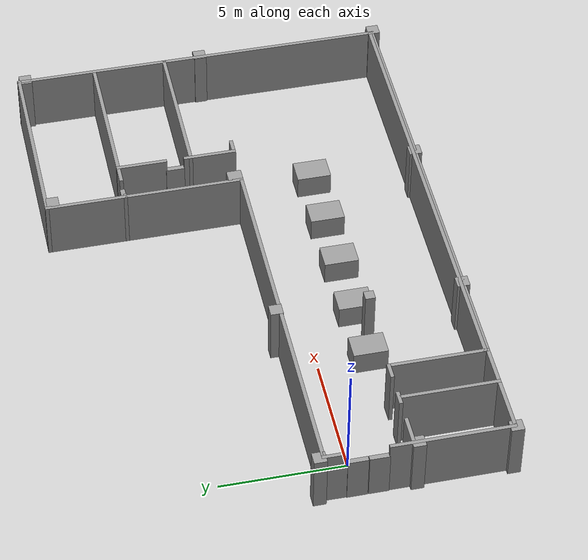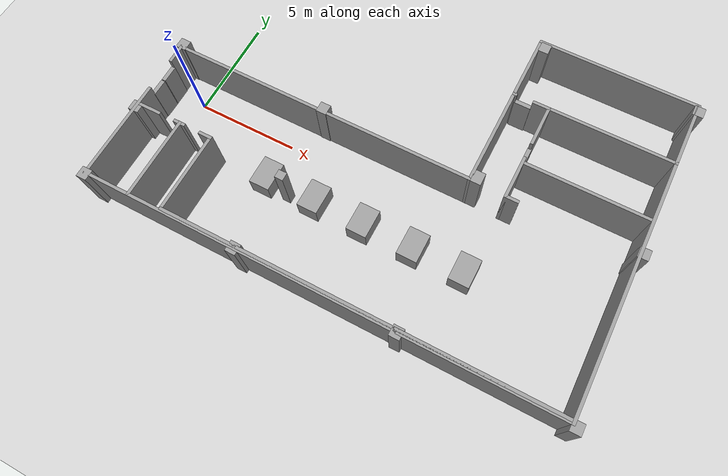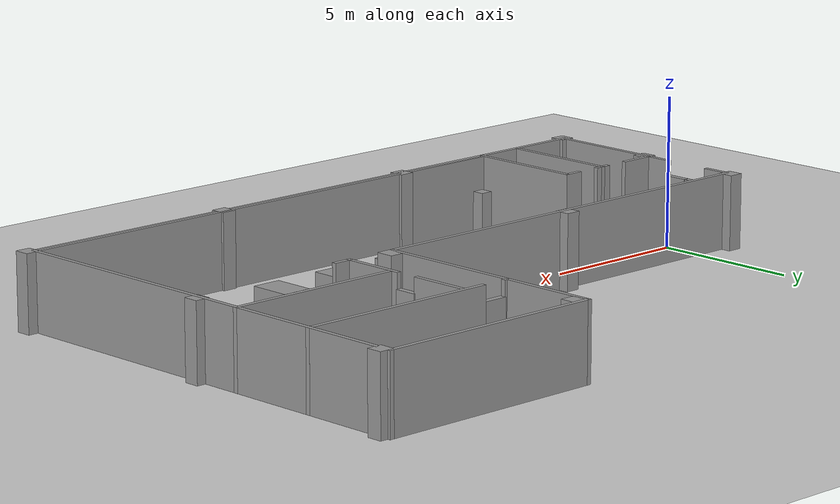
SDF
<sdf version="1.6">
 <world name="default">
  <light name="sun" type="directional">
   <pose>0 0 10 0 -0 0</pose>
   <diffuse>0.8 0.8 0.8 1</diffuse>
   <specular>0.2 0.2 0.2 1</specular>
   <attenuation>
    <range>1000</range>
    <constant>0.9</constant>
    <linear>0.01</linear>
    <quadratic>0.001</quadratic>
   </attenuation>
   <direction>-0.5 0.1 -0.9</direction>
  </light>
  <model name="ground_plane">
   <static>1</static>
   <link name="link">
    <collision name="collision">
     <geometry><plane><normal>0 0 1</normal><size>100 100</size></plane></geometry>
     <surface>
      <contact><collide_bitmask>65535</collide_bitmask></contact>
      <friction><ode><mu>100</mu><mu2>50</mu2></ode></friction>
     </surface>
    </collision>
    <visual name="visual">
     <cast_shadows>0</cast_shadows>
     <geometry><plane><normal>0 0 1</normal><size>100 100</size></plane></geometry>
     <material>
      <script><uri>file://media/materials/scripts/gazebo.material</uri><name>Gazebo/Grey</name></script>
     </material>
    </visual>
   </link>
  </model>
  <gravity>0 0 -9.8</gravity>
  <magnetic_field>6e-06 2.3e-05 -4.2e-05</magnetic_field>
  <atmosphere type="adiabatic"/>
  <physics name="default_physics" default="0" type="ode">
   <max_step_size>0.001</max_step_size>
   <real_time_factor>1</real_time_factor>
   <real_time_update_rate>1000</real_time_update_rate>
  </physics>
  <scene><ambient>0.4 0.4 0.4 1</ambient><background>0.7 0.7 0.7 1</background><shadows>1</shadows></scene>
  <spherical_coordinates>
   <surface_model>EARTH_WGS84</surface_model>
   <latitude_deg>0</latitude_deg>
   <longitude_deg>0</longitude_deg>
   <elevation>0</elevation>
   <heading_deg>0</heading_deg>
  </spherical_coordinates>
  <model name="care_lab_111_112">
   <pose>10 1.5 0 0 -0 0</pose>
   <link name="Door_2">
    <collision name="Door_2_Collision">
     <geometry><box><size>0.796 0.2 2</size></box></geometry>
     <pose>0 0 1 0 -0 0</pose>
    </collision>
    <visual name="Door_2_Visual">
     <pose>0 0 1 0 -0 0</pose>
     <geometry><box><size>0.796 0.2 2</size></box></geometry>
     <material>
      <script><uri>file://media/materials/scripts/gazebo.material</uri><name>Gazebo/Grey</name></script>
     </material>
    </visual>
    <pose>-11.3896 -2.35824 0 0 -0 1.56448</pose>
   </link>
   <link name="Door_3">
    <collision name="Door_3_Collision">
     <geometry><box><size>0.814 0.2 2</size></box></geometry>
     <pose>0 0 1 0 -0 0</pose>
    </collision>
    <visual name="Door_3_Visual">
     <pose>0 0 1 0 -0 0</pose>
     <geometry><box><size>0.814 0.2 2</size></box></geometry>
     <material>
      <script><uri>file://media/materials/scripts/gazebo.material</uri><name>Gazebo/Grey</name></script>
     </material>
    </visual>
    <pose>-11.3896 -1.52824 0 0 0 -1.56747</pose>
   </link>
   <link name="Door_4">
    <collision name="Door_4_Collision">
     <geometry><box><size>0.805661 0.2 2</size></box></geometry>
     <pose>0 0 1 0 -0 0</pose>
    </collision>
    <visual name="Door_4_Visual">
     <pose>0 0 1 0 -0 0</pose>
     <geometry><box><size>0.805661 0.2 2</size></box></geometry>
     <material>
      <script><uri>file://media/materials/scripts/gazebo.material</uri><name>Gazebo/Grey</name></script>
     </material>
    </visual>
    <pose>4.05156 4.57073 0 0 -0 0</pose>
   </link>
   <link name="Door_5">
    <collision name="Door_5_Collision">
     <geometry><box><size>0.763931 0.2 2</size></box></geometry>
     <pose>0 0 1 0 -0 0</pose>
    </collision>
    <visual name="Door_5_Visual">
     <pose>0 0 1 0 -0 0</pose>
     <geometry><box><size>0.763931 0.2 2</size></box></geometry>
     <material>
      <script><uri>file://media/materials/scripts/gazebo.material</uri><name>Gazebo/Grey</name></script>
     </material>
    </visual>
    <pose>5.23912 2.23085 0 0 -0 1.56757</pose>
   </link>
   <link name="Wall_13">
    <collision name="Wall_13_Collision">
     <geometry><box><size>22.754 0.15 2.5</size></box></geometry>
     <pose>0 0 1.25 0 -0 0</pose>
    </collision>
    <visual name="Wall_13_Visual">
     <pose>0 0 1.25 0 -0 0</pose>
     <geometry><box><size>22.754 0.15 2.5</size></box></geometry>
     <material>
      <script><uri>file://media/materials/scripts/gazebo.material</uri><name>Gazebo/Grey</name></script>
      <ambient>1 1 1 1</ambient>
     </material>
     <meta><layer>0</layer></meta>
    </visual>
    <pose>-0.087589 -7.53924 0 0 -0 0</pose>
   </link>
   <link name="Wall_14">
    <collision name="Wall_14_Collision">
     <geometry><box><size>15.485 0.15 2.5</size></box></geometry>
     <pose>0 0 1.25 0 -0 0</pose>
    </collision>
    <visual name="Wall_14_Visual">
     <pose>0 0 1.25 0 -0 0</pose>
     <geometry><box><size>15.485 0.15 2.5</size></box></geometry>
     <material>
      <script><uri>file://media/materials/scripts/gazebo.material</uri><name>Gazebo/Grey</name></script>
      <ambient>1 1 1 1</ambient>
     </material>
     <meta><layer>0</layer></meta>
    </visual>
    <pose>11.2144 0.128262 0 0 -0 1.5708</pose>
   </link>
   <link name="Wall_16">
    <collision name="Wall_16_Collision">
     <geometry><box><size>7.83619 0.15 2.5</size></box></geometry>
     <pose>0 0 1.25 0 -0 0</pose>
    </collision>
    <visual name="Wall_16_Visual">
     <pose>0 0 1.25 0 -0 0</pose>
     <geometry><box><size>7.83619 0.15 2.5</size></box></geometry>
     <material>
      <script><uri>file://media/materials/scripts/gazebo.material</uri><name>Gazebo/Grey</name></script>
      <ambient>1 1 1 1</ambient>
     </material>
     <meta><layer>0</layer></meta>
    </visual>
    <pose>7.37141 7.79576 0 0 -0 3.14159</pose>
   </link>
   <link name="Wall_18">
    <collision name="Wall_18_Collision">
     <geometry><box><size>8.15342 0.15 2.5</size></box></geometry>
     <pose>0 0 1.25 0 -0 0</pose>
    </collision>
    <visual name="Wall_18_Visual">
     <pose>0 0 1.25 0 -0 0</pose>
     <geometry><box><size>8.15342 0.15 2.5</size></box></geometry>
     <material>
      <script><uri>file://media/materials/scripts/gazebo.material</uri><name>Gazebo/Grey</name></script>
      <ambient>1 1 1 1</ambient>
     </material>
     <meta><layer>0</layer></meta>
    </visual>
    <pose>3.52841 3.79426 0 0 -0 -1.5708</pose>
   </link>
   <link name="Wall_19">
    <collision name="Wall_19_Collision">
     <geometry><box><size>15.068 0.15 2.5</size></box></geometry>
     <pose>0 0 1.25 0 -0 0</pose>
    </collision>
    <visual name="Wall_19_Visual">
     <pose>0 0 1.25 0 -0 0</pose>
     <geometry><box><size>15.068 0.15 2.5</size></box></geometry>
     <material>
      <script><uri>file://media/materials/scripts/gazebo.material</uri><name>Gazebo/Grey</name></script>
      <ambient>1 1 1 1</ambient>
     </material>
     <meta><layer>0</layer></meta>
    </visual>
    <pose>-3.93059 -0.207238 0 0 -0 3.14159</pose>
   </link>
   <link name="Wall_21">
    <collision name="Wall_21_Collision">
     <geometry><box><size>0.997 0.15 2.5</size></box></geometry>
     <pose>0 0 1.25 0 -0 0</pose>
    </collision>
    <visual name="Wall_21_Visual">
     <pose>0 0 1.25 0 -0 0</pose>
     <geometry><box><size>0.997 0.15 2.5</size></box></geometry>
     <material>
      <script><uri>file://media/materials/scripts/gazebo.material</uri><name>Gazebo/Grey</name></script>
      <ambient>1 1 1 1</ambient>
     </material>
     <meta><layer>0</layer></meta>
    </visual>
    <pose>-11.3896 -0.630738 0 0 -0 -1.5708</pose>
   </link>
   <link name="Wall_24">
    <collision name="Wall_24_Collision">
     <geometry><box><size>4.892 0.15 2.5</size></box></geometry>
     <pose>0 0 1.25 0 -0 0</pose>
    </collision>
    <visual name="Wall_24_Visual">
     <pose>0 0 1.25 0 -0 0</pose>
     <geometry><box><size>4.892 0.15 2.5</size></box></geometry>
     <material>
      <script><uri>file://media/materials/scripts/gazebo.material</uri><name>Gazebo/Grey</name></script>
      <ambient>1 1 1 1</ambient>
     </material>
     <meta><layer>0</layer></meta>
    </visual>
    <pose>-11.3896 -5.16824 0 0 -0 -1.5708</pose>
   </link>
   <link name="Wall_30">
    <collision name="Wall_30_Collision">
     <geometry><box><size>1.25 0.15 2.5</size></box></geometry>
     <pose>0 0 1.25 0 -0 0</pose>
    </collision>
    <visual name="Wall_30_Visual">
     <pose>0 0 1.25 0 -0 0</pose>
     <geometry><box><size>1.25 0.15 2.5</size></box></geometry>
     <material>
      <script><uri>file://media/materials/scripts/gazebo.material</uri><name>Gazebo/Grey</name></script>
      <ambient>1 1 1 1</ambient>
     </material>
     <meta><layer>0</layer></meta>
    </visual>
    <pose>-10.8145 -3.64547 0 0 -0 0</pose>
   </link>
   <link name="Wall_32">
    <collision name="Wall_32_Collision">
     <geometry><box><size>0.588 0.15 2.5</size></box></geometry>
     <pose>0 0 1.25 0 -0 0</pose>
    </collision>
    <visual name="Wall_32_Visual">
     <pose>0 0 1.25 0 -0 0</pose>
     <geometry><box><size>0.588 0.15 2.5</size></box></geometry>
     <material>
      <script><uri>file://media/materials/scripts/gazebo.material</uri><name>Gazebo/Grey</name></script>
      <ambient>1 1 1 1</ambient>
     </material>
     <meta><layer>0</layer></meta>
    </visual>
    <pose>-9.15859 -3.64524 0 0 -0 0</pose>
   </link>
   <link name="Wall_34">
    <collision name="Wall_34_Collision">
     <geometry><box><size>0.678 0.15 2.5</size></box></geometry>
     <pose>0 0 1.25 0 -0 0</pose>
    </collision>
    <visual name="Wall_34_Visual">
     <pose>0 0 1.25 0 -0 0</pose>
     <geometry><box><size>0.678 0.15 2.5</size></box></geometry>
     <material>
      <script><uri>file://media/materials/scripts/gazebo.material</uri><name>Gazebo/Grey</name></script>
      <ambient>1 1 1 1</ambient>
     </material>
     <meta><layer>0</layer></meta>
    </visual>
    <pose>-7.77559 -3.64524 0 0 -0 0</pose>
   </link>
   <link name="Wall_36">
    <collision name="Wall_36_Collision">
     <geometry><box><size>4.03556 0.15 2.5</size></box></geometry>
     <pose>0 0 1.25 0 -0 0</pose>
    </collision>
    <visual name="Wall_36_Visual">
     <pose>0 0 1.25 0 -0 0</pose>
     <geometry><box><size>4.03556 0.15 2.5</size></box></geometry>
     <material>
      <script><uri>file://media/materials/scripts/gazebo.material</uri><name>Gazebo/Grey</name></script>
      <ambient>1 1 1 1</ambient>
     </material>
     <meta><layer>0</layer></meta>
    </visual>
    <pose>-7.51159 -5.58824 0 0 -0 -1.5708</pose>
   </link>
   <link name="Wall_39">
    <collision name="Wall_39_Collision">
     <geometry><box><size>4.041 0.15 2.5</size></box></geometry>
     <pose>0 0 1.25 0 -0 0</pose>
    </collision>
    <visual name="Wall_39_Visual">
     <pose>0 0 1.25 0 -0 0</pose>
     <geometry><box><size>4.041 0.15 2.5</size></box></geometry>
     <material>
      <script><uri>file://media/materials/scripts/gazebo.material</uri><name>Gazebo/Grey</name></script>
      <ambient>1 1 1 1</ambient>
     </material>
     <meta><layer>0</layer></meta>
    </visual>
    <pose>-9.13359 -5.59074 0 0 -0 1.5708</pose>
   </link>
   <link name="Wall_42">
    <collision name="Wall_42_Collision">
     <geometry><box><size>18.858 0.15 2.5</size></box></geometry>
     <pose>0 0 1.25 0 -0 0</pose>
    </collision>
    <visual name="Wall_42_Visual">
     <pose>0 0 1.25 0 -0 0</pose>
     <geometry><box><size>18.858 0.15 2.5</size></box></geometry>
     <material>
      <script><uri>file://media/materials/scripts/gazebo.material</uri><name>Gazebo/Grey</name></script>
      <ambient>1 1 1 1</ambient>
     </material>
     <meta><layer>0</layer></meta>
    </visual>
    <pose>1.86041 -7.44724 0 0 -0 0</pose>
   </link>
   <link name="Wall_44">
    <collision name="Wall_44_Collision">
     <geometry><box><size>0.51 0.5 2.5</size></box></geometry>
     <pose>0 0 1.25 0 -0 0</pose>
    </collision>
    <visual name="Wall_44_Visual">
     <pose>0 0 1.25 0 -0 0</pose>
     <geometry><box><size>0.51 0.5 2.5</size></box></geometry>
     <material>
      <script><uri>file://media/materials/scripts/gazebo.material</uri><name>Gazebo/Grey</name></script>
      <ambient>1 1 1 1</ambient>
     </material>
     <meta><layer>0</layer></meta>
    </visual>
    <pose>3.82501 7.52635 0 0 -0 1.5708</pose>
   </link>
   <link name="Wall_46">
    <collision name="Wall_46_Collision">
     <geometry><box><size>0.51 0.5 2.5</size></box></geometry>
     <pose>0 0 1.25 0 -0 0</pose>
    </collision>
    <visual name="Wall_46_Visual">
     <pose>0 0 1.25 0 -0 0</pose>
     <geometry><box><size>0.51 0.5 2.5</size></box></geometry>
     <material>
      <script><uri>file://media/materials/scripts/gazebo.material</uri><name>Gazebo/Grey</name></script>
      <ambient>1 1 1 1</ambient>
     </material>
     <meta><layer>0</layer></meta>
    </visual>
    <pose>11.3024 7.52234 0 0 -0 1.5708</pose>
   </link>
   <link name="Wall_50">
    <collision name="Wall_50_Collision">
     <geometry><box><size>0.6 0.5 2.5</size></box></geometry>
     <pose>0 0 1.25 0 -0 0</pose>
    </collision>
    <visual name="Wall_50_Visual">
     <pose>0 0 1.25 0 -0 0</pose>
     <geometry><box><size>0.6 0.5 2.5</size></box></geometry>
     <material>
      <script><uri>file://media/materials/scripts/gazebo.material</uri><name>Gazebo/Grey</name></script>
      <ambient>1 1 1 1</ambient>
     </material>
     <meta><layer>0</layer></meta>
    </visual>
    <pose>3.81841 0.014914 0 0 -0 1.5708</pose>
   </link>
   <link name="Wall_52">
    <collision name="Wall_52_Collision">
     <geometry><box><size>6.836 0.15 2.5</size></box></geometry>
     <pose>0 0 1.25 0 -0 0</pose>
    </collision>
    <visual name="Wall_52_Visual">
     <pose>0 0 1.25 0 -0 0</pose>
     <geometry><box><size>6.836 0.15 2.5</size></box></geometry>
     <material>
      <script><uri>file://media/materials/scripts/gazebo.material</uri><name>Gazebo/Grey</name></script>
      <ambient>1 1 1 1</ambient>
     </material>
     <meta><layer>0</layer></meta>
    </visual>
    <pose>7.87141 4.58676 0 0 -0 0</pose>
   </link>
   <link name="Wall_54">
    <collision name="Wall_54_Collision">
     <geometry><box><size>2.094 0.15 2.5</size></box></geometry>
     <pose>0 0 1.25 0 -0 0</pose>
    </collision>
    <visual name="Wall_54_Visual">
     <pose>0 0 1.25 0 -0 0</pose>
     <geometry><box><size>2.094 0.15 2.5</size></box></geometry>
     <material>
      <script><uri>file://media/materials/scripts/gazebo.material</uri><name>Gazebo/Grey</name></script>
      <ambient>1 1 1 1</ambient>
     </material>
     <meta><layer>0</layer></meta>
    </visual>
    <pose>5.23641 3.61476 0 0 -0 -1.5708</pose>
   </link>
   <link name="Wall_57">
    <collision name="Wall_57_Collision">
     <geometry><box><size>2.174 0.15 2.5</size></box></geometry>
     <pose>0 0 1.25 0 -0 0</pose>
    </collision>
    <visual name="Wall_57_Visual">
     <pose>0 0 1.25 0 -0 0</pose>
     <geometry><box><size>2.174 0.15 2.5</size></box></geometry>
     <material>
      <script><uri>file://media/materials/scripts/gazebo.material</uri><name>Gazebo/Grey</name></script>
      <ambient>1 1 1 1</ambient>
     </material>
     <meta><layer>0</layer></meta>
    </visual>
    <pose>5.23341 0.774762 0 0 -0 -1.5708</pose>
   </link>
   <link name="Wall_60">
    <collision name="Wall_60_Collision">
     <geometry><box><size>6.131 0.15 2.5</size></box></geometry>
     <pose>0 0 1.25 0 -0 0</pose>
    </collision>
    <visual name="Wall_60_Visual">
     <pose>0 0 1.25 0 -0 0</pose>
     <geometry><box><size>6.131 0.15 2.5</size></box></geometry>
     <material>
      <script><uri>file://media/materials/scripts/gazebo.material</uri><name>Gazebo/Grey</name></script>
      <ambient>1 1 1 1</ambient>
     </material>
     <meta><layer>0</layer></meta>
    </visual>
    <pose>8.22391 1.56876 0 0 -0 3.14159</pose>
   </link>
   <link name="Wall_62">
    <collision name="Wall_62_Collision">
     <geometry><box><size>0.51 0.5 2.5</size></box></geometry>
     <pose>0 0 1.25 0 -0 0</pose>
    </collision>
    <visual name="Wall_62_Visual">
     <pose>0 0 1.25 0 -0 0</pose>
     <geometry><box><size>0.51 0.5 2.5</size></box></geometry>
     <material>
      <script><uri>file://media/materials/scripts/gazebo.material</uri><name>Gazebo/Grey</name></script>
      <ambient>1 1 1 1</ambient>
     </material>
     <meta><layer>0</layer></meta>
    </visual>
    <pose>-11.3837 -0.052975 0 0 -0 -1.5708</pose>
   </link>
   <link name="Wall_64">
    <collision name="Wall_64_Collision">
     <geometry><box><size>0.51 0.5 2.5</size></box></geometry>
     <pose>0 0 1.25 0 -0 0</pose>
    </collision>
    <visual name="Wall_64_Visual">
     <pose>0 0 1.25 0 -0 0</pose>
     <geometry><box><size>0.51 0.5 2.5</size></box></geometry>
     <material>
      <script><uri>file://media/materials/scripts/gazebo.material</uri><name>Gazebo/Grey</name></script>
      <ambient>1 1 1 1</ambient>
     </material>
     <meta><layer>0</layer></meta>
    </visual>
    <pose>-3.80512 -0.054559 0 0 -0 1.5708</pose>
   </link>
   <link name="Wall_68">
    <collision name="Wall_68_Collision">
     <geometry><box><size>0.51 0.5 2.5</size></box></geometry>
     <pose>0 0 1.25 0 -0 0</pose>
    </collision>
    <visual name="Wall_68_Visual">
     <pose>0 0 1.25 0 -0 0</pose>
     <geometry><box><size>0.51 0.5 2.5</size></box></geometry>
     <material>
      <script><uri>file://media/materials/scripts/gazebo.material</uri><name>Gazebo/Grey</name></script>
      <ambient>1 1 1 1</ambient>
     </material>
     <meta><layer>0</layer></meta>
    </visual>
    <pose>11.3464 0.011996 0 0 -0 1.5708</pose>
   </link>
   <link name="Wall_70">
    <collision name="Wall_70_Collision">
     <geometry><box><size>0.51 0.5 2.5</size></box></geometry>
     <pose>0 0 1.25 0 -0 0</pose>
    </collision>
    <visual name="Wall_70_Visual">
     <pose>0 0 1.25 0 -0 0</pose>
     <geometry><box><size>0.51 0.5 2.5</size></box></geometry>
     <material>
      <script><uri>file://media/materials/scripts/gazebo.material</uri><name>Gazebo/Grey</name></script>
      <ambient>1 1 1 1</ambient>
     </material>
     <meta><layer>0</layer></meta>
    </visual>
    <pose>11.3857 -7.61597 0 0 -0 1.5708</pose>
   </link>
   <link name="Wall_72">
    <collision name="Wall_72_Collision">
     <geometry><box><size>0.51 0.5 2.5</size></box></geometry>
     <pose>0 0 1.25 0 -0 0</pose>
    </collision>
    <visual name="Wall_72_Visual">
     <pose>0 0 1.25 0 -0 0</pose>
     <geometry><box><size>0.51 0.5 2.5</size></box></geometry>
     <material>
      <script><uri>file://media/materials/scripts/gazebo.material</uri><name>Gazebo/Grey</name></script>
      <ambient>1 1 1 1</ambient>
     </material>
     <meta><layer>0</layer></meta>
    </visual>
    <pose>3.77054 -7.53752 0 0 -0 -1.5708</pose>
   </link>
   <link name="Wall_75">
    <collision name="Wall_75_Collision">
     <geometry><box><size>0.51 0.5 2.5</size></box></geometry>
     <pose>0 0 1.25 0 -0 0</pose>
    </collision>
    <visual name="Wall_75_Visual">
     <pose>0 0 1.25 0 -0 0</pose>
     <geometry><box><size>0.51 0.5 2.5</size></box></geometry>
     <material>
      <script><uri>file://media/materials/scripts/gazebo.material</uri><name>Gazebo/Grey</name></script>
      <ambient>1 1 1 1</ambient>
     </material>
     <meta><layer>0</layer></meta>
    </visual>
    <pose>-3.83947 -7.52575 0 0 -0 -1.5708</pose>
   </link>
   <link name="Wall_77">
    <collision name="Wall_77_Collision">
     <geometry><box><size>0.51 0.5 2.5</size></box></geometry>
     <pose>0 0 1.25 0 -0 0</pose>
    </collision>
    <visual name="Wall_77_Visual">
     <pose>0 0 1.25 0 -0 0</pose>
     <geometry><box><size>0.51 0.5 2.5</size></box></geometry>
     <material>
      <script><uri>file://media/materials/scripts/gazebo.material</uri><name>Gazebo/Grey</name></script>
      <ambient>1 1 1 1</ambient>
     </material>
     <meta><layer>0</layer></meta>
    </visual>
    <pose>-11.3857 -7.59331 0 0 -0 1.5708</pose>
   </link>
   <link name="Wall_79">
    <collision name="Wall_79_Collision">
     <geometry><box><size>0.51 0.5 2.5</size></box></geometry>
     <pose>0 0 1.25 0 -0 0</pose>
    </collision>
    <visual name="Wall_79_Visual">
     <pose>0 0 1.25 0 -0 0</pose>
     <geometry><box><size>0.51 0.5 2.5</size></box></geometry>
     <material>
      <script><uri>file://media/materials/scripts/gazebo.material</uri><name>Gazebo/Grey</name></script>
      <ambient>1 1 1 1</ambient>
     </material>
     <meta><layer>0</layer></meta>
    </visual>
    <pose>-11.3789 -3.82735 0 0 -0 -1.5708</pose>
   </link>
   <link name="Wall_81">
    <collision name="Wall_81_Collision">
     <geometry><box><size>0.697 0.15 2.5</size></box></geometry>
     <pose>0 0 1.25 0 -0 0</pose>
    </collision>
    <visual name="Wall_81_Visual">
     <pose>0 0 1.25 0 -0 0</pose>
     <geometry><box><size>0.697 0.15 2.5</size></box></geometry>
     <material>
      <script><uri>file://media/materials/scripts/gazebo.material</uri><name>Gazebo/Grey</name></script>
      <ambient>1 1 1 1</ambient>
     </material>
     <meta><layer>0</layer></meta>
    </visual>
    <pose>5.50691 -0.237238 0 0 -0 0</pose>
   </link>
   <link name="Wall_83">
    <collision name="Wall_83_Collision">
     <geometry><box><size>0.41 0.4 2.5</size></box></geometry>
     <pose>0 0 1.25 0 -0 0</pose>
    </collision>
    <visual name="Wall_83_Visual">
     <pose>0 0 1.25 0 -0 0</pose>
     <geometry><box><size>0.41 0.4 2.5</size></box></geometry>
     <material>
      <script><uri>file://media/materials/scripts/gazebo.material</uri><name>Gazebo/Grey</name></script>
      <ambient>1 1 1 1</ambient>
     </material>
     <meta><layer>0</layer></meta>
    </visual>
    <pose>-3.79657 -3.78449 0 0 -0 0</pose>
   </link>
   <link name="Wall_85">
    <collision name="Wall_85_Collision">
     <geometry><box><size>0.229 0.15 2.5</size></box></geometry>
     <pose>0 0 1.25 0 -0 0</pose>
    </collision>
    <visual name="Wall_85_Visual">
     <pose>0 0 1.25 0 -0 0</pose>
     <geometry><box><size>0.229 0.15 2.5</size></box></geometry>
     <material>
      <script><uri>file://media/materials/scripts/gazebo.material</uri><name>Gazebo/Grey</name></script>
      <ambient>1 1 1 1</ambient>
     </material>
     <meta><layer>0</layer></meta>
    </visual>
    <pose>3.56791 4.58676 0 0 -0 0</pose>
   </link>
   <static>1</static>
  </model>
  <model name="robot_base">
   <link name="link_0">
    <inertial>
     <mass>1</mass>
     <inertia>
      <ixx>0.166667</ixx>
      <ixy>0</ixy>
      <ixz>0</ixz>
      <iyy>0.166667</iyy>
      <iyz>0</iyz>
      <izz>0.166667</izz>
     </inertia>
    </inertial>
    <visual name="visual">
     <geometry><box><size>1 1.4 1</size></box></geometry>
     <material>
      <lighting>1</lighting>
      <script><uri>file://media/materials/scripts/gazebo.material</uri><name>Gazebo/Grey</name></script>
      <shader type="pixel"><normal_map>__default__</normal_map></shader>
      <ambient>0.3 0.3 0.3 1</ambient>
      <diffuse>0.7 0.7 0.7 1</diffuse>
      <specular>0.01 0.01 0.01 1</specular>
      <emissive>0 0 0 1</emissive>
     </material>
    </visual>
    <collision name="collision">
     <geometry><box><size>1 1.4 1</size></box></geometry>
     <surface>
      <friction>
       <ode><mu>1</mu><mu2>1</mu2><fdir1>0 0 0</fdir1><slip1>0</slip1><slip2>0</slip2></ode>
       <torsional>
        <coefficient>1</coefficient>
        <patch_radius>0</patch_radius>
        <surface_radius>0</surface_radius>
        <use_patch_radius>1</use_patch_radius>
        <ode><slip>0</slip></ode>
       </torsional>
      </friction>
      <bounce><restitution_coefficient>0</restitution_coefficient><threshold>1e+06</threshold></bounce>
      <contact>
       <collide_without_contact>0</collide_without_contact>
       <collide_without_contact_bitmask>1</collide_without_contact_bitmask>
       <collide_bitmask>1</collide_bitmask>
       <ode>
        <soft_cfm>0</soft_cfm>
        <soft_erp>0.2</soft_erp>
        <kp>1e+13</kp>
        <kd>1</kd>
        <max_vel>0.01</max_vel>
        <min_depth>0</min_depth>
       </ode>
       <bullet>
        <split_impulse>1</split_impulse>
        <split_impulse_penetration_threshold>-0.01</split_impulse_penetration_threshold>
        <soft_cfm>0</soft_cfm>
        <soft_erp>0.2</soft_erp>
        <kp>1e+13</kp>
        <kd>1</kd>
       </bullet>
      </contact>
     </surface>
    </collision>
   </link>
   <static>1</static>
   <pose>7.5 -2 0.5 0 -0 0</pose>
  </model>
  <model name="robot_base_clone">
   <link name="link_0">
    <inertial>
     <mass>1</mass>
     <inertia>
      <ixx>0.166667</ixx>
      <ixy>0</ixy>
      <ixz>0</ixz>
      <iyy>0.166667</iyy>
      <iyz>0</iyz>
      <izz>0.166667</izz>
     </inertia>
    </inertial>
    <visual name="visual">
     <geometry><box><size>1 1.4 1</size></box></geometry>
     <material>
      <lighting>1</lighting>
      <script><uri>file://media/materials/scripts/gazebo.material</uri><name>Gazebo/Grey</name></script>
      <shader type="pixel"><normal_map>__default__</normal_map></shader>
      <ambient>0.3 0.3 0.3 1</ambient>
      <diffuse>0.7 0.7 0.7 1</diffuse>
      <specular>0.01 0.01 0.01 1</specular>
      <emissive>0 0 0 1</emissive>
     </material>
    </visual>
    <collision name="collision">
     <geometry><box><size>1 1.4 1</size></box></geometry>
     <surface>
      <friction>
       <ode><mu>1</mu><mu2>1</mu2><fdir1>0 0 0</fdir1><slip1>0</slip1><slip2>0</slip2></ode>
       <torsional>
        <coefficient>1</coefficient>
        <patch_radius>0</patch_radius>
        <surface_radius>0</surface_radius>
        <use_patch_radius>1</use_patch_radius>
        <ode><slip>0</slip></ode>
       </torsional>
      </friction>
      <bounce><restitution_coefficient>0</restitution_coefficient><threshold>1e+06</threshold></bounce>
      <contact>
       <collide_without_contact>0</collide_without_contact>
       <collide_without_contact_bitmask>1</collide_without_contact_bitmask>
       <collide_bitmask>1</collide_bitmask>
       <ode>
        <soft_cfm>0</soft_cfm>
        <soft_erp>0.2</soft_erp>
        <kp>1e+13</kp>
        <kd>1</kd>
        <max_vel>0.01</max_vel>
        <min_depth>0</min_depth>
       </ode>
       <bullet>
        <split_impulse>1</split_impulse>
        <split_impulse_penetration_threshold>-0.01</split_impulse_penetration_threshold>
        <soft_cfm>0</soft_cfm>
        <soft_erp>0.2</soft_erp>
        <kp>1e+13</kp>
        <kd>1</kd>
       </bullet>
      </contact>
     </surface>
    </collision>
   </link>
   <static>1</static>
   <pose>5 -2 0.5 0 -0 0</pose>
  </model>
  <model name="robot_base_clone_0">
   <link name="link_0">
    <inertial>
     <mass>1</mass>
     <inertia>
      <ixx>0.166667</ixx>
      <ixy>0</ixy>
      <ixz>0</ixz>
      <iyy>0.166667</iyy>
      <iyz>0</iyz>
      <izz>0.166667</izz>
     </inertia>
    </inertial>
    <visual name="visual">
     <geometry><box><size>1 1.4 1</size></box></geometry>
     <material>
      <lighting>1</lighting>
      <script><uri>file://media/materials/scripts/gazebo.material</uri><name>Gazebo/Grey</name></script>
      <shader type="pixel"><normal_map>__default__</normal_map></shader>
      <ambient>0.3 0.3 0.3 1</ambient>
      <diffuse>0.7 0.7 0.7 1</diffuse>
      <specular>0.01 0.01 0.01 1</specular>
      <emissive>0 0 0 1</emissive>
     </material>
    </visual>
    <collision name="collision">
     <geometry><box><size>1 1.4 1</size></box></geometry>
     <surface>
      <friction>
       <ode><mu>1</mu><mu2>1</mu2><fdir1>0 0 0</fdir1><slip1>0</slip1><slip2>0</slip2></ode>
       <torsional>
        <coefficient>1</coefficient>
        <patch_radius>0</patch_radius>
        <surface_radius>0</surface_radius>
        <use_patch_radius>1</use_patch_radius>
        <ode><slip>0</slip></ode>
       </torsional>
      </friction>
      <bounce><restitution_coefficient>0</restitution_coefficient><threshold>1e+06</threshold></bounce>
      <contact>
       <collide_without_contact>0</collide_without_contact>
       <collide_without_contact_bitmask>1</collide_without_contact_bitmask>
       <collide_bitmask>1</collide_bitmask>
       <ode>
        <soft_cfm>0</soft_cfm>
        <soft_erp>0.2</soft_erp>
        <kp>1e+13</kp>
        <kd>1</kd>
        <max_vel>0.01</max_vel>
        <min_depth>0</min_depth>
       </ode>
       <bullet>
        <split_impulse>1</split_impulse>
        <split_impulse_penetration_threshold>-0.01</split_impulse_penetration_threshold>
        <soft_cfm>0</soft_cfm>
        <soft_erp>0.2</soft_erp>
        <kp>1e+13</kp>
        <kd>1</kd>
       </bullet>
      </contact>
     </surface>
    </collision>
   </link>
   <static>1</static>
   <pose>10 -2 0.5 0 -0 0</pose>
  </model>
  <model name="robot_base_clone_1">
   <link name="link_0">
    <inertial>
     <mass>1</mass>
     <inertia>
      <ixx>0.166667</ixx>
      <ixy>0</ixy>
      <ixz>0</ixz>
      <iyy>0.166667</iyy>
      <iyz>0</iyz>
      <izz>0.166667</izz>
     </inertia>
    </inertial>
    <visual name="visual">
     <geometry><box><size>1 1.4 1</size></box></geometry>
     <material>
      <lighting>1</lighting>
      <script><uri>file://media/materials/scripts/gazebo.material</uri><name>Gazebo/Grey</name></script>
      <shader type="pixel"><normal_map>__default__</normal_map></shader>
      <ambient>0.3 0.3 0.3 1</ambient>
      <diffuse>0.7 0.7 0.7 1</diffuse>
      <specular>0.01 0.01 0.01 1</specular>
      <emissive>0 0 0 1</emissive>
     </material>
    </visual>
    <collision name="collision">
     <geometry><box><size>1 1.4 1</size></box></geometry>
     <surface>
      <friction>
       <ode><mu>1</mu><mu2>1</mu2><fdir1>0 0 0</fdir1><slip1>0</slip1><slip2>0</slip2></ode>
       <torsional>
        <coefficient>1</coefficient>
        <patch_radius>0</patch_radius>
        <surface_radius>0</surface_radius>
        <use_patch_radius>1</use_patch_radius>
        <ode><slip>0</slip></ode>
       </torsional>
      </friction>
      <bounce><restitution_coefficient>0</restitution_coefficient><threshold>1e+06</threshold></bounce>
      <contact>
       <collide_without_contact>0</collide_without_contact>
       <collide_without_contact_bitmask>1</collide_without_contact_bitmask>
       <collide_bitmask>1</collide_bitmask>
       <ode>
        <soft_cfm>0</soft_cfm>
        <soft_erp>0.2</soft_erp>
        <kp>1e+13</kp>
        <kd>1</kd>
        <max_vel>0.01</max_vel>
        <min_depth>0</min_depth>
       </ode>
       <bullet>
        <split_impulse>1</split_impulse>
        <split_impulse_penetration_threshold>-0.01</split_impulse_penetration_threshold>
        <soft_cfm>0</soft_cfm>
        <soft_erp>0.2</soft_erp>
        <kp>1e+13</kp>
        <kd>1</kd>
       </bullet>
      </contact>
     </surface>
    </collision>
   </link>
   <static>1</static>
   <pose>12.5 -2 0.5 0 -0 0</pose>
  </model>
  <model name="robot_base_clone_2">
   <link name="link_0">
    <inertial>
     <mass>1</mass>
     <inertia>
      <ixx>0.166667</ixx>
      <ixy>0</ixy>
      <ixz>0</ixz>
      <iyy>0.166667</iyy>
      <iyz>0</iyz>
      <izz>0.166667</izz>
     </inertia>
    </inertial>
    <visual name="visual">
     <geometry><box><size>1 1.4 1</size></box></geometry>
     <material>
      <lighting>1</lighting>
      <script><uri>file://media/materials/scripts/gazebo.material</uri><name>Gazebo/Grey</name></script>
      <shader type="pixel"><normal_map>__default__</normal_map></shader>
      <ambient>0.3 0.3 0.3 1</ambient>
      <diffuse>0.7 0.7 0.7 1</diffuse>
      <specular>0.01 0.01 0.01 1</specular>
      <emissive>0 0 0 1</emissive>
     </material>
    </visual>
    <collision name="collision">
     <geometry><box><size>1 1.4 1</size></box></geometry>
     <surface>
      <friction>
       <ode><mu>1</mu><mu2>1</mu2><fdir1>0 0 0</fdir1><slip1>0</slip1><slip2>0</slip2></ode>
       <torsional>
        <coefficient>1</coefficient>
        <patch_radius>0</patch_radius>
        <surface_radius>0</surface_radius>
        <use_patch_radius>1</use_patch_radius>
        <ode><slip>0</slip></ode>
       </torsional>
      </friction>
      <bounce><restitution_coefficient>0</restitution_coefficient><threshold>1e+06</threshold></bounce>
      <contact>
       <collide_without_contact>0</collide_without_contact>
       <collide_without_contact_bitmask>1</collide_without_contact_bitmask>
       <collide_bitmask>1</collide_bitmask>
       <ode>
        <soft_cfm>0</soft_cfm>
        <soft_erp>0.2</soft_erp>
        <kp>1e+13</kp>
        <kd>1</kd>
        <max_vel>0.01</max_vel>
        <min_depth>0</min_depth>
       </ode>
       <bullet>
        <split_impulse>1</split_impulse>
        <split_impulse_penetration_threshold>-0.01</split_impulse_penetration_threshold>
        <soft_cfm>0</soft_cfm>
        <soft_erp>0.2</soft_erp>
        <kp>1e+13</kp>
        <kd>1</kd>
       </bullet>
      </contact>
     </surface>
    </collision>
   </link>
   <static>1</static>
   <pose>15 -2 0.5 0 -0 0</pose>
  </model>
 </world>
</sdf>
